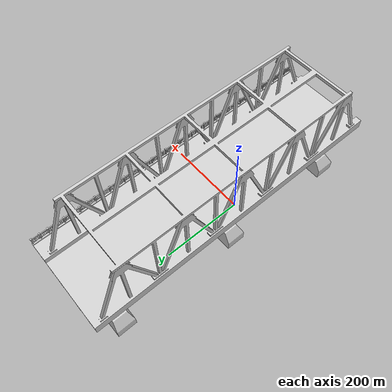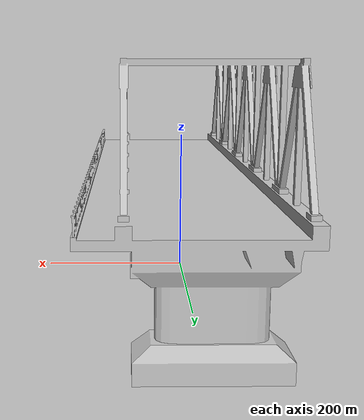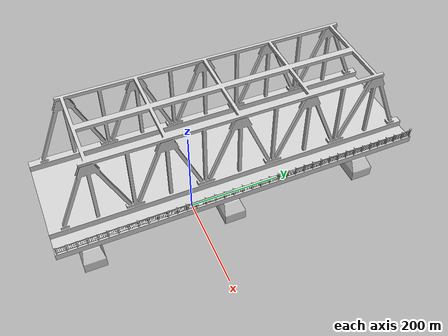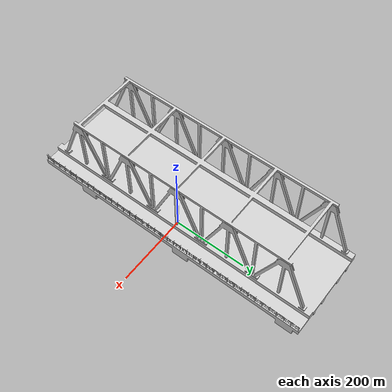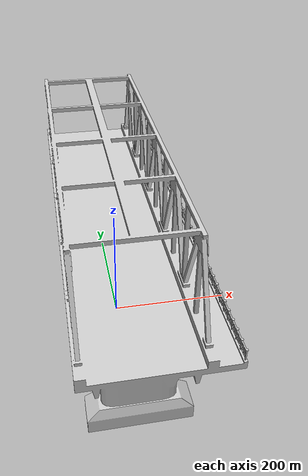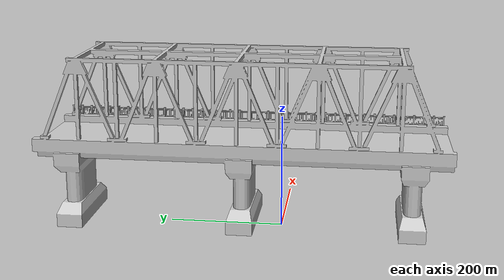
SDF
<?xml version="1.0" ?>
<sdf version="1.7">
  <model name="high_voltage_tower">
    <pose>0 0 0 0 0 0</pose>
    <static>true</static>
    <link name="link">
      <pose>0 0 0 0 0 0</pose>
      <inertial>
        <inertia>
          <ixx>1</ixx>
          <ixy>0</ixy>
          <ixz>0</ixz>
          <iyy>1</iyy>
          <iyz>0</iyz>
          <izz>1</izz>
        </inertia>
        <mass>1.0</mass>
      </inertial>
      <visual name="visual">
        <geometry>
          <mesh>
            <uri>model://bridge_2/meshes/bridge.dae</uri>
          </mesh>
        </geometry>
        <material>
          <name>Gazebo/Orange</name>
          <uri>file://media/materials/scripts/gazebo.material</uri>
        </material>
      </visual>
    </link>
  </model>
</sdf>
